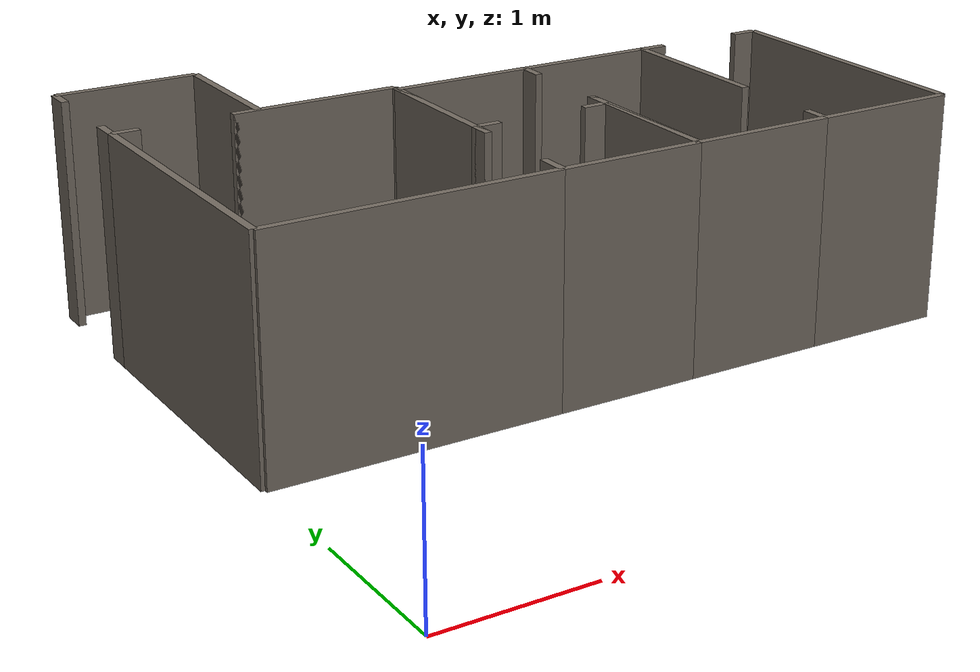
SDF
<?xml version="1.0" ?>
<sdf version="1.9">
  <model name="labirinto_fase4">
    <static>true</static>
    <link name="parede_000">
      <pose>0.4750 4.6500 0.7500 0 0 0.000000</pose>
        <collision name="collision">
          <geometry><box><size>0.9500 0.0500 1.5000</size></box></geometry>
        </collision>
        <visual name="visual">
          <geometry><box><size>0.9500 0.0500 1.5000</size></box></geometry>
          <material>
            <ambient>0.35 0.32 0.28 1</ambient>
            <diffuse>0.45 0.42 0.38 1</diffuse>
          </material>
        </visual>
    </link>
    <link name="parede_001">
      <pose>0.0875 3.7000 0.7500 0 0 0.000000</pose>
        <collision name="collision">
          <geometry><box><size>0.1750 0.0500 1.5000</size></box></geometry>
        </collision>
        <visual name="visual">
          <geometry><box><size>0.1750 0.0500 1.5000</size></box></geometry>
          <material>
            <ambient>0.35 0.32 0.28 1</ambient>
            <diffuse>0.45 0.42 0.38 1</diffuse>
          </material>
        </visual>
    </link>
    <link name="parede_002">
      <pose>0.8625 3.7000 0.7500 0 0 0.000000</pose>
        <collision name="collision">
          <geometry><box><size>0.1750 0.0500 1.5000</size></box></geometry>
        </collision>
        <visual name="visual">
          <geometry><box><size>0.1750 0.0500 1.5000</size></box></geometry>
          <material>
            <ambient>0.35 0.32 0.28 1</ambient>
            <diffuse>0.45 0.42 0.38 1</diffuse>
          </material>
        </visual>
    </link>
    <link name="parede_003">
      <pose>0.0000 3.7875 0.7500 0 0 1.570796</pose>
        <collision name="collision">
          <geometry><box><size>0.1750 0.0500 1.5000</size></box></geometry>
        </collision>
        <visual name="visual">
          <geometry><box><size>0.1750 0.0500 1.5000</size></box></geometry>
          <material>
            <ambient>0.35 0.32 0.28 1</ambient>
            <diffuse>0.45 0.42 0.38 1</diffuse>
          </material>
        </visual>
    </link>
    <link name="parede_004">
      <pose>0.0000 4.5625 0.7500 0 0 1.570796</pose>
        <collision name="collision">
          <geometry><box><size>0.1750 0.0500 1.5000</size></box></geometry>
        </collision>
        <visual name="visual">
          <geometry><box><size>0.1750 0.0500 1.5000</size></box></geometry>
          <material>
            <ambient>0.35 0.32 0.28 1</ambient>
            <diffuse>0.45 0.42 0.38 1</diffuse>
          </material>
        </visual>
    </link>
    <link name="parede_005">
      <pose>0.9500 4.1750 0.7500 0 0 1.570796</pose>
        <collision name="collision">
          <geometry><box><size>0.9500 0.0500 1.5000</size></box></geometry>
        </collision>
        <visual name="visual">
          <geometry><box><size>0.9500 0.0500 1.5000</size></box></geometry>
          <material>
            <ambient>0.35 0.32 0.28 1</ambient>
            <diffuse>0.45 0.42 0.38 1</diffuse>
          </material>
        </visual>
    </link>
    <link name="parede_006">
      <pose>1.3375 3.7000 0.7500 0 0 0.000000</pose>
        <collision name="collision">
          <geometry><box><size>1.1250 0.0500 1.5000</size></box></geometry>
        </collision>
        <visual name="visual">
          <geometry><box><size>1.1250 0.0500 1.5000</size></box></geometry>
          <material>
            <ambient>0.35 0.32 0.28 1</ambient>
            <diffuse>0.45 0.42 0.38 1</diffuse>
          </material>
        </visual>
    </link>
    <link name="parede_007">
      <pose>0.9500 1.7500 0.7500 0 0 0.000000</pose>
        <collision name="collision">
          <geometry><box><size>1.9000 0.0500 1.5000</size></box></geometry>
        </collision>
        <visual name="visual">
          <geometry><box><size>1.9000 0.0500 1.5000</size></box></geometry>
          <material>
            <ambient>0.35 0.32 0.28 1</ambient>
            <diffuse>0.45 0.42 0.38 1</diffuse>
          </material>
        </visual>
    </link>
    <link name="parede_008">
      <pose>0.0000 2.7250 0.7500 0 0 1.570796</pose>
        <collision name="collision">
          <geometry><box><size>1.9500 0.0500 1.5000</size></box></geometry>
        </collision>
        <visual name="visual">
          <geometry><box><size>1.9500 0.0500 1.5000</size></box></geometry>
          <material>
            <ambient>0.35 0.32 0.28 1</ambient>
            <diffuse>0.45 0.42 0.38 1</diffuse>
          </material>
        </visual>
    </link>
    <link name="parede_009">
      <pose>1.9000 1.8500 0.7500 0 0 1.570796</pose>
        <collision name="collision">
          <geometry><box><size>0.2000 0.0500 1.5000</size></box></geometry>
        </collision>
        <visual name="visual">
          <geometry><box><size>0.2000 0.0500 1.5000</size></box></geometry>
          <material>
            <ambient>0.35 0.32 0.28 1</ambient>
            <diffuse>0.45 0.42 0.38 1</diffuse>
          </material>
        </visual>
    </link>
    <link name="parede_010">
      <pose>1.9000 3.1250 0.7500 0 0 1.570796</pose>
        <collision name="collision">
          <geometry><box><size>1.1500 0.0500 1.5000</size></box></geometry>
        </collision>
        <visual name="visual">
          <geometry><box><size>1.1500 0.0500 1.5000</size></box></geometry>
          <material>
            <ambient>0.35 0.32 0.28 1</ambient>
            <diffuse>0.45 0.42 0.38 1</diffuse>
          </material>
        </visual>
    </link>
    <link name="parede_011">
      <pose>1.9875 2.7000 0.7500 0 0 0.000000</pose>
        <collision name="collision">
          <geometry><box><size>0.1750 0.0500 1.5000</size></box></geometry>
        </collision>
        <visual name="visual">
          <geometry><box><size>0.1750 0.0500 1.5000</size></box></geometry>
          <material>
            <ambient>0.35 0.32 0.28 1</ambient>
            <diffuse>0.45 0.42 0.38 1</diffuse>
          </material>
        </visual>
    </link>
    <link name="parede_012">
      <pose>2.7625 2.7000 0.7500 0 0 0.000000</pose>
        <collision name="collision">
          <geometry><box><size>0.1750 0.0500 1.5000</size></box></geometry>
        </collision>
        <visual name="visual">
          <geometry><box><size>0.1750 0.0500 1.5000</size></box></geometry>
          <material>
            <ambient>0.35 0.32 0.28 1</ambient>
            <diffuse>0.45 0.42 0.38 1</diffuse>
          </material>
        </visual>
    </link>
    <link name="parede_013">
      <pose>2.3750 1.7500 0.7500 0 0 0.000000</pose>
        <collision name="collision">
          <geometry><box><size>0.9500 0.0500 1.5000</size></box></geometry>
        </collision>
        <visual name="visual">
          <geometry><box><size>0.9500 0.0500 1.5000</size></box></geometry>
          <material>
            <ambient>0.35 0.32 0.28 1</ambient>
            <diffuse>0.45 0.42 0.38 1</diffuse>
          </material>
        </visual>
    </link>
    <link name="parede_014">
      <pose>1.9000 2.6250 0.7500 0 0 1.570796</pose>
        <collision name="collision">
          <geometry><box><size>0.1500 0.0500 1.5000</size></box></geometry>
        </collision>
        <visual name="visual">
          <geometry><box><size>0.1500 0.0500 1.5000</size></box></geometry>
          <material>
            <ambient>0.35 0.32 0.28 1</ambient>
            <diffuse>0.45 0.42 0.38 1</diffuse>
          </material>
        </visual>
    </link>
    <link name="parede_015">
      <pose>2.8500 2.2250 0.7500 0 0 1.570796</pose>
        <collision name="collision">
          <geometry><box><size>0.9500 0.0500 1.5000</size></box></geometry>
        </collision>
        <visual name="visual">
          <geometry><box><size>0.9500 0.0500 1.5000</size></box></geometry>
          <material>
            <ambient>0.35 0.32 0.28 1</ambient>
            <diffuse>0.45 0.42 0.38 1</diffuse>
          </material>
        </visual>
    </link>
    <link name="parede_016">
      <pose>2.3750 3.6500 0.7500 0 0 0.000000</pose>
        <collision name="collision">
          <geometry><box><size>0.9500 0.0500 1.5000</size></box></geometry>
        </collision>
        <visual name="visual">
          <geometry><box><size>0.9500 0.0500 1.5000</size></box></geometry>
          <material>
            <ambient>0.35 0.32 0.28 1</ambient>
            <diffuse>0.45 0.42 0.38 1</diffuse>
          </material>
        </visual>
    </link>
    <link name="parede_017">
      <pose>1.9000 3.1750 0.7500 0 0 1.570796</pose>
        <collision name="collision">
          <geometry><box><size>0.9500 0.0500 1.5000</size></box></geometry>
        </collision>
        <visual name="visual">
          <geometry><box><size>0.9500 0.0500 1.5000</size></box></geometry>
          <material>
            <ambient>0.35 0.32 0.28 1</ambient>
            <diffuse>0.45 0.42 0.38 1</diffuse>
          </material>
        </visual>
    </link>
    <link name="parede_018">
      <pose>2.8500 2.7875 0.7500 0 0 1.570796</pose>
        <collision name="collision">
          <geometry><box><size>0.1750 0.0500 1.5000</size></box></geometry>
        </collision>
        <visual name="visual">
          <geometry><box><size>0.1750 0.0500 1.5000</size></box></geometry>
          <material>
            <ambient>0.35 0.32 0.28 1</ambient>
            <diffuse>0.45 0.42 0.38 1</diffuse>
          </material>
        </visual>
    </link>
    <link name="parede_019">
      <pose>2.8500 3.5625 0.7500 0 0 1.570796</pose>
        <collision name="collision">
          <geometry><box><size>0.1750 0.0500 1.5000</size></box></geometry>
        </collision>
        <visual name="visual">
          <geometry><box><size>0.1750 0.0500 1.5000</size></box></geometry>
          <material>
            <ambient>0.35 0.32 0.28 1</ambient>
            <diffuse>0.45 0.42 0.38 1</diffuse>
          </material>
        </visual>
    </link>
    <link name="parede_020">
      <pose>3.3250 3.6500 0.7500 0 0 0.000000</pose>
        <collision name="collision">
          <geometry><box><size>0.9500 0.0500 1.5000</size></box></geometry>
        </collision>
        <visual name="visual">
          <geometry><box><size>0.9500 0.0500 1.5000</size></box></geometry>
          <material>
            <ambient>0.35 0.32 0.28 1</ambient>
            <diffuse>0.45 0.42 0.38 1</diffuse>
          </material>
        </visual>
    </link>
    <link name="parede_021">
      <pose>3.3250 1.7500 0.7500 0 0 0.000000</pose>
        <collision name="collision">
          <geometry><box><size>0.9500 0.0500 1.5000</size></box></geometry>
        </collision>
        <visual name="visual">
          <geometry><box><size>0.9500 0.0500 1.5000</size></box></geometry>
          <material>
            <ambient>0.35 0.32 0.28 1</ambient>
            <diffuse>0.45 0.42 0.38 1</diffuse>
          </material>
        </visual>
    </link>
    <link name="parede_022">
      <pose>2.8500 2.3125 0.7500 0 0 1.570796</pose>
        <collision name="collision">
          <geometry><box><size>1.1250 0.0500 1.5000</size></box></geometry>
        </collision>
        <visual name="visual">
          <geometry><box><size>1.1250 0.0500 1.5000</size></box></geometry>
          <material>
            <ambient>0.35 0.32 0.28 1</ambient>
            <diffuse>0.45 0.42 0.38 1</diffuse>
          </material>
        </visual>
    </link>
    <link name="parede_023">
      <pose>3.8000 1.8375 0.7500 0 0 1.570796</pose>
        <collision name="collision">
          <geometry><box><size>0.1750 0.0500 1.5000</size></box></geometry>
        </collision>
        <visual name="visual">
          <geometry><box><size>0.1750 0.0500 1.5000</size></box></geometry>
          <material>
            <ambient>0.35 0.32 0.28 1</ambient>
            <diffuse>0.45 0.42 0.38 1</diffuse>
          </material>
        </visual>
    </link>
    <link name="parede_024">
      <pose>3.8000 3.0875 0.7500 0 0 1.570796</pose>
        <collision name="collision">
          <geometry><box><size>1.1250 0.0500 1.5000</size></box></geometry>
        </collision>
        <visual name="visual">
          <geometry><box><size>1.1250 0.0500 1.5000</size></box></geometry>
          <material>
            <ambient>0.35 0.32 0.28 1</ambient>
            <diffuse>0.45 0.42 0.38 1</diffuse>
          </material>
        </visual>
    </link>
    <link name="parede_025">
      <pose>3.8875 3.6500 0.7500 0 0 0.000000</pose>
        <collision name="collision">
          <geometry><box><size>0.1750 0.0500 1.5000</size></box></geometry>
        </collision>
        <visual name="visual">
          <geometry><box><size>0.1750 0.0500 1.5000</size></box></geometry>
          <material>
            <ambient>0.35 0.32 0.28 1</ambient>
            <diffuse>0.45 0.42 0.38 1</diffuse>
          </material>
        </visual>
    </link>
    <link name="parede_026">
      <pose>4.6625 3.6500 0.7500 0 0 0.000000</pose>
        <collision name="collision">
          <geometry><box><size>0.1750 0.0500 1.5000</size></box></geometry>
        </collision>
        <visual name="visual">
          <geometry><box><size>0.1750 0.0500 1.5000</size></box></geometry>
          <material>
            <ambient>0.35 0.32 0.28 1</ambient>
            <diffuse>0.45 0.42 0.38 1</diffuse>
          </material>
        </visual>
    </link>
    <link name="parede_027">
      <pose>4.2750 1.7500 0.7500 0 0 0.000000</pose>
        <collision name="collision">
          <geometry><box><size>0.9500 0.0500 1.5000</size></box></geometry>
        </collision>
        <visual name="visual">
          <geometry><box><size>0.9500 0.0500 1.5000</size></box></geometry>
          <material>
            <ambient>0.35 0.32 0.28 1</ambient>
            <diffuse>0.45 0.42 0.38 1</diffuse>
          </material>
        </visual>
    </link>
    <link name="parede_028">
      <pose>4.7500 2.7000 0.7500 0 0 1.570796</pose>
        <collision name="collision">
          <geometry><box><size>1.9000 0.0500 1.5000</size></box></geometry>
        </collision>
        <visual name="visual">
          <geometry><box><size>1.9000 0.0500 1.5000</size></box></geometry>
          <material>
            <ambient>0.35 0.32 0.28 1</ambient>
            <diffuse>0.45 0.42 0.38 1</diffuse>
          </material>
        </visual>
    </link>
  </model>
</sdf>
